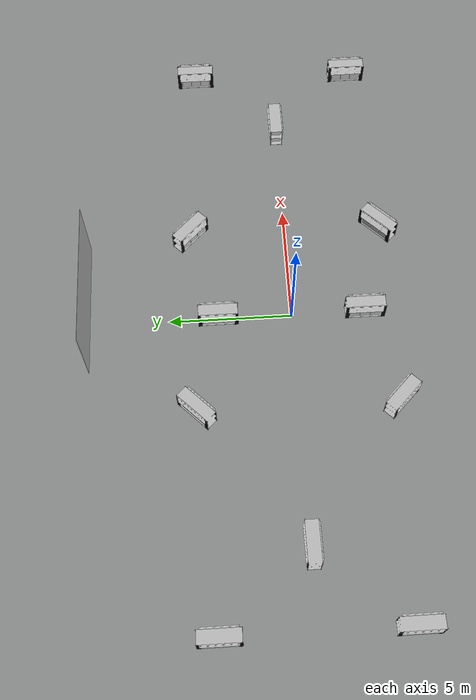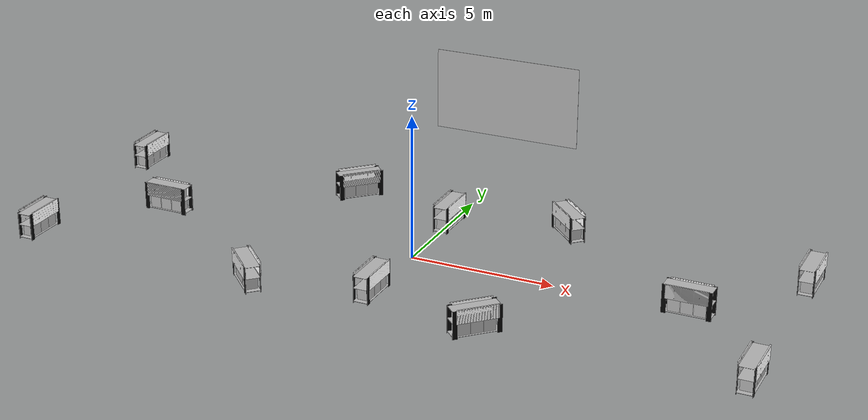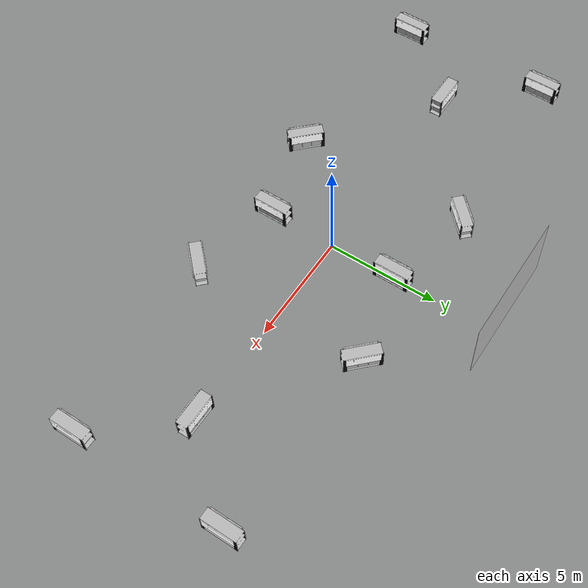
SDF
<sdf version="1.10">
 <world name="default">
  <physics type="ode">
   <max_step_size>0.0040000000000000001</max_step_size>
   <real_time_factor>1</real_time_factor>
   <real_time_update_rate>250</real_time_update_rate>
  </physics>
  <plugin name="gz::sim::systems::Physics" filename="gz-sim-physics-system"/>
  <plugin name="gz::sim::systems::UserCommands" filename="gz-sim-user-commands-system"/>
  <plugin name="gz::sim::systems::SceneBroadcaster" filename="gz-sim-scene-broadcaster-system"/>
  <plugin name="gz::sim::systems::Contact" filename="gz-sim-contact-system"/>
  <plugin name="gz::sim::systems::Imu" filename="gz-sim-imu-system"/>
  <plugin name="gz::sim::systems::Magnetometer" filename="gz-sim-magnetometer-system"/>
  <plugin name="gz::sim::systems::Altimeter" filename="gz-sim-altimeter-system"/>
  <plugin name="gz::sim::systems::NavSat" filename="gz-sim-navsat-system"/>
  <plugin name="gz::sim::systems::Sensors" filename="gz-sim-sensors-system">
   <render_engine>ogre2</render_engine>
  </plugin>
  <gravity>0 0 -9.8000000000000007</gravity>
  <magnetic_field>6.0000000000000002e-06 2.3e-05 -4.1999999999999998e-05</magnetic_field>
  <atmosphere type="adiabatic"/>
  <spherical_coordinates>
   <surface_model>EARTH_WGS84</surface_model>
   <latitude_deg>39.79480109851339</latitude_deg>
   <longitude_deg>-84.08631702793322</longitude_deg>
   <elevation>265.2</elevation>
   <heading_deg>0</heading_deg>
  </spherical_coordinates>
  <scene><grid>false</grid></scene>
  <model name="curtain_1">
   <static>true</static>
   <link name="main">
    <visual name="objects">
     <pose>-4 -4 0 0 0 0.78539816339</pose>
     <geometry><mesh><uri>curtain.dae</uri></mesh></geometry>
    </visual>
   </link>
  </model>
  <model name="rack_three_diverse_1">
   <static>true</static>
   <link name="main">
    <visual name="objects">
     <pose>-4 -4 0 0 0 0.78539816339</pose>
     <geometry><mesh><uri>rack_three_diverse_1.dae</uri></mesh></geometry>
    </visual>
   </link>
  </model>
  <model name="curtain_2">
   <static>true</static>
   <link name="main">
    <visual name="objects">
     <pose>4 4 0 0 0 0.78539816339</pose>
     <geometry><mesh><uri>curtain.dae</uri></mesh></geometry>
    </visual>
   </link>
  </model>
  <model name="rack_three_diverse_2">
   <static>true</static>
   <link name="main">
    <visual name="objects">
     <pose>4 4 0 0 0 0.78539816339</pose>
     <geometry><mesh><uri>rack_three_diverse_2.dae</uri></mesh></geometry>
    </visual>
   </link>
  </model>
  <model name="curtain_3">
   <static>true</static>
   <link name="main">
    <visual name="objects">
     <pose>4 -4 0 0 0 -0.78539816339</pose>
     <geometry><mesh><uri>curtain.dae</uri></mesh></geometry>
    </visual>
   </link>
  </model>
  <model name="rack_three_diverse_3">
   <static>true</static>
   <link name="main">
    <visual name="objects">
     <pose>4 -4 0 0 0 -0.78539816339</pose>
     <geometry><mesh><uri>rack_three_diverse_3.dae</uri></mesh></geometry>
    </visual>
   </link>
  </model>
  <model name="curtain_4">
   <static>true</static>
   <link name="main">
    <visual name="objects">
     <pose>-4 4 0 0 0 -0.78539816339</pose>
     <geometry><mesh><uri>curtain.dae</uri></mesh></geometry>
    </visual>
   </link>
  </model>
  <model name="rack_three_diverse_4">
   <static>true</static>
   <link name="main">
    <visual name="objects">
     <pose>-4 4 0 0 0 -0.78539816339</pose>
     <geometry><mesh><uri>rack_three_diverse_4.dae</uri></mesh></geometry>
    </visual>
   </link>
  </model>
  <model name="curtain_7">
   <static>true</static>
   <link name="main">
    <visual name="objects">
     <pose>0 -3.0 0 0 0 0</pose>
     <geometry><mesh><uri>curtain.dae</uri></mesh></geometry>
    </visual>
   </link>
  </model>
  <model name="rack_three_diverse_7">
   <static>true</static>
   <link name="main">
    <visual name="objects">
     <pose>0 -3.0 0 0 0 0</pose>
     <geometry><mesh><uri>rack_three_diverse_7.dae</uri></mesh></geometry>
    </visual>
   </link>
  </model>
  <model name="curtain_8">
   <static>true</static>
   <link name="main">
    <visual name="objects">
     <pose>0 3.0 0 0 0 0</pose>
     <geometry><mesh><uri>curtain.dae</uri></mesh></geometry>
    </visual>
   </link>
  </model>
  <model name="rack_three_diverse_8">
   <static>true</static>
   <link name="main">
    <visual name="objects">
     <pose>0 3.0 0 0 0 0</pose>
     <geometry><mesh><uri>rack_three_diverse_8.dae</uri></mesh></geometry>
    </visual>
   </link>
  </model>
  <model name="curtain_5">
   <static>true</static>
   <link name="main">
    <visual name="objects">
     <pose>-12.5 3.5 0 0 0 0</pose>
     <geometry><mesh><uri>curtain.dae</uri></mesh></geometry>
    </visual>
   </link>
  </model>
  <model name="rack_three_diverse_5">
   <static>true</static>
   <link name="main">
    <visual name="objects">
     <pose>-12.5 3.5 0 0 0 0</pose>
     <geometry><mesh><uri>rack_three_diverse_5.dae</uri></mesh></geometry>
    </visual>
   </link>
  </model>
  <model name="curtain_6">
   <static>true</static>
   <link name="main">
    <visual name="objects">
     <pose>12.5 3.5 0 0 0 0</pose>
     <geometry><mesh><uri>curtain.dae</uri></mesh></geometry>
    </visual>
   </link>
  </model>
  <model name="rack_three_diverse_6">
   <static>true</static>
   <link name="main">
    <visual name="objects">
     <pose>12.5 3.5 0 0 0 0</pose>
     <geometry><mesh><uri>rack_three_diverse_6.dae</uri></mesh></geometry>
    </visual>
   </link>
  </model>
  <model name="curtain_9">
   <static>true</static>
   <link name="main">
    <visual name="objects">
     <pose>-12.5 -3.5 0 0 0 0</pose>
     <geometry><mesh><uri>curtain.dae</uri></mesh></geometry>
    </visual>
   </link>
  </model>
  <model name="rack_three_diverse_9">
   <static>true</static>
   <link name="main">
    <visual name="objects">
     <pose>-12.5 -3.5 0 0 0 0</pose>
     <geometry><mesh><uri>rack_three_diverse_9.dae</uri></mesh></geometry>
    </visual>
   </link>
  </model>
  <model name="curtain_10">
   <static>true</static>
   <link name="main">
    <visual name="objects">
     <pose>12.5 -3.5 0 0 0 0</pose>
     <geometry><mesh><uri>curtain.dae</uri></mesh></geometry>
    </visual>
   </link>
  </model>
  <model name="rack_three_diverse_10">
   <static>true</static>
   <link name="main">
    <visual name="objects">
     <pose>12.5 -3.5 0 0 0 0</pose>
     <geometry><mesh><uri>rack_three_diverse_10.dae</uri></mesh></geometry>
    </visual>
   </link>
  </model>
  <model name="rack_three_diverse_11">
   <static>true</static>
   <link name="main">
    <visual name="objects">
     <pose>-9.5 0 0 0 0 1.57079632679</pose>
     <geometry><mesh><uri>rack_three_diverse_11.dae</uri></mesh></geometry>
    </visual>
   </link>
  </model>
  <model name="curtain_11">
   <static>true</static>
   <link name="main">
    <visual name="objects">
     <pose>-9.5 0 0 0 0 1.57079632679</pose>
     <geometry><mesh><uri>curtain.dae</uri></mesh></geometry>
    </visual>
   </link>
  </model>
  <model name="rack_three_diverse_12">
   <static>true</static>
   <link name="main">
    <visual name="objects">
     <pose>9.5 0 0 0 0 1.57079632679</pose>
     <geometry><mesh><uri>rack_three_diverse_12.dae</uri></mesh></geometry>
    </visual>
   </link>
  </model>
  <model name="curtain_12">
   <static>true</static>
   <link name="main">
    <visual name="objects">
     <pose>9.5 0 0 0 0 1.57079632679</pose>
     <geometry><mesh><uri>curtain.dae</uri></mesh></geometry>
    </visual>
   </link>
  </model>
  <model name="nxp">
   <static>true</static>
   <link name="main">
    <visual name="objects">
     <pose>0 8.0 3 0 0 -1.57079632679</pose>
     <geometry><mesh><scale>5 5 5</scale><uri>nxp.dae</uri></mesh></geometry>
    </visual>
   </link>
   <joint name="world_joint" type="fixed"><parent>world</parent><child>main</child></joint>
  </model>
 </world>
</sdf>
